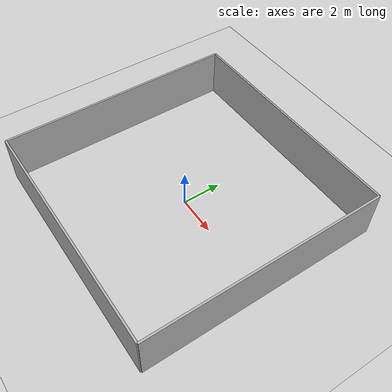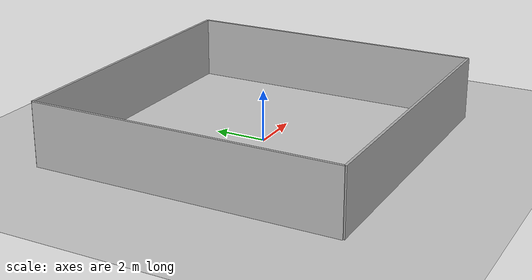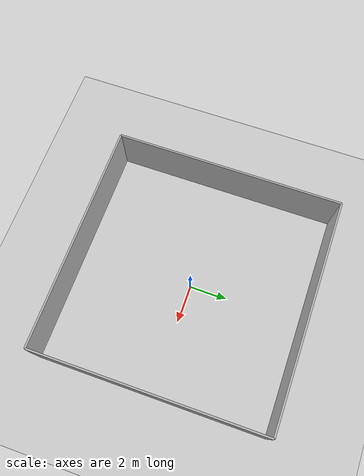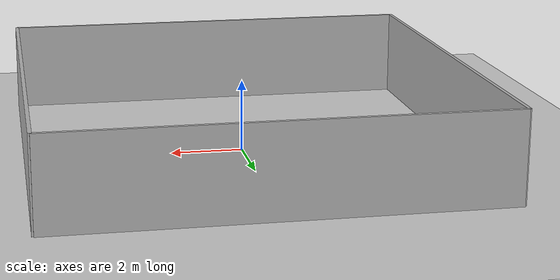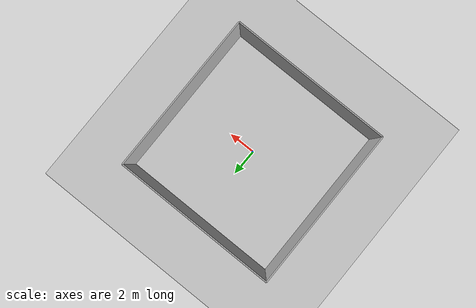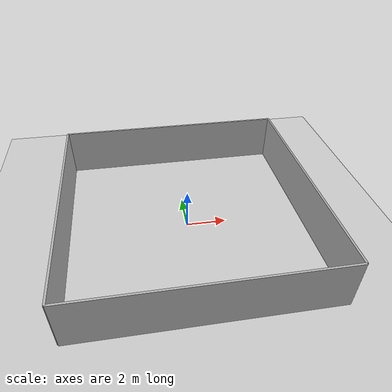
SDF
<?xml version="1.0"?>

<sdf version="1.6">
  <world name="default">

    <!-- Tweak to run at higher or lower speeds -->
    <physics name="normal" type="ode">
      <real_time_update_rate>1000</real_time_update_rate>
      <max_step_size>0.001</max_step_size>
    </physics>

    <!-- Ground plane -->
    <include>
      <uri>model://ground_plane</uri>
    </include>

    <!-- Lighting -->
    <include>
      <uri>model://sun</uri>
    </include>

    <!-- Arena walls (12m x 12m, 2.5m tall, 0.1m thick) -->
    <model name="arena_wall_north">
      <static>true</static>
      <pose>0 6 1.25 0 0 0</pose>
      <link name="link">
        <collision name="collision">
          <geometry>
            <box>
              <size>12 0.1 2.5</size>
            </box>
          </geometry>
        </collision>
        <visual name="visual">
          <geometry>
            <box>
              <size>12 0.1 2.5</size>
            </box>
          </geometry>
          <material>
            <ambient>0.7 0.7 0.7 1</ambient>
            <diffuse>0.7 0.7 0.7 1</diffuse>
          </material>
        </visual>
      </link>
    </model>

    <model name="arena_wall_south">
      <static>true</static>
      <pose>0 -6 1.25 0 0 0</pose>
      <link name="link">
        <collision name="collision">
          <geometry>
            <box>
              <size>12 0.1 2.5</size>
            </box>
          </geometry>
        </collision>
        <visual name="visual">
          <geometry>
            <box>
              <size>12 0.1 2.5</size>
            </box>
          </geometry>
          <material>
            <ambient>0.7 0.7 0.7 1</ambient>
            <diffuse>0.7 0.7 0.7 1</diffuse>
          </material>
        </visual>
      </link>
    </model>

    <model name="arena_wall_east">
      <static>true</static>
      <pose>6 0 1.25 0 0 0</pose>
      <link name="link">
        <collision name="collision">
          <geometry>
            <box>
              <size>0.1 12 2.5</size>
            </box>
          </geometry>
        </collision>
        <visual name="visual">
          <geometry>
            <box>
              <size>0.1 12 2.5</size>
            </box>
          </geometry>
          <material>
            <ambient>0.7 0.7 0.7 1</ambient>
            <diffuse>0.7 0.7 0.7 1</diffuse>
          </material>
        </visual>
      </link>
    </model>

    <model name="arena_wall_west">
      <static>true</static>
      <pose>-6 0 1.25 0 0 0</pose>
      <link name="link">
        <collision name="collision">
          <geometry>
            <box>
              <size>0.1 12 2.5</size>
            </box>
          </geometry>
        </collision>
        <visual name="visual">
          <geometry>
            <box>
              <size>0.1 12 2.5</size>
            </box>
          </geometry>
          <material>
            <ambient>0.7 0.7 0.7 1</ambient>
            <diffuse>0.7 0.7 0.7 1</diffuse>
          </material>
        </visual>
      </link>
    </model>

    <!-- Publie /model_states et /link_states pour ROS2 -->
    <plugin name="gazebo_ros_state" filename="libgazebo_ros_state.so">
      <update_rate>50</update_rate>
    </plugin>

  </world>
</sdf>
